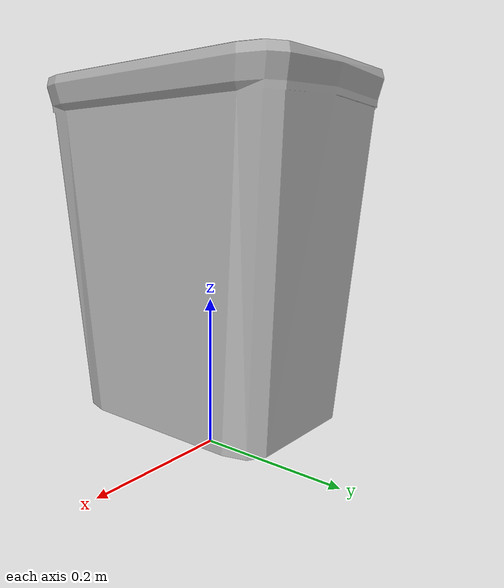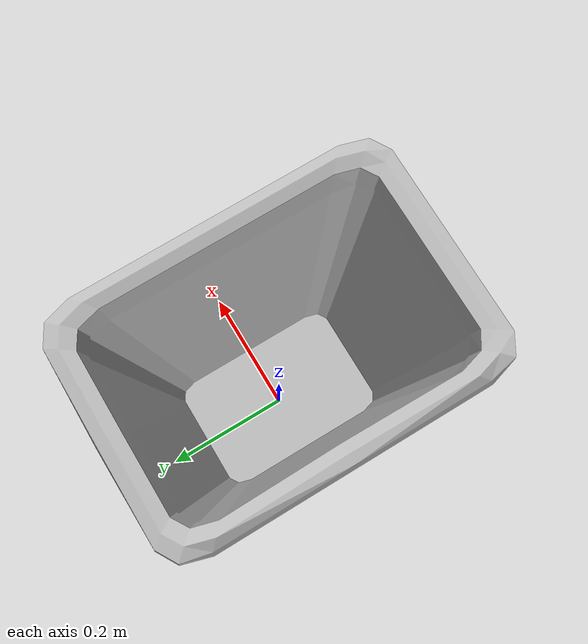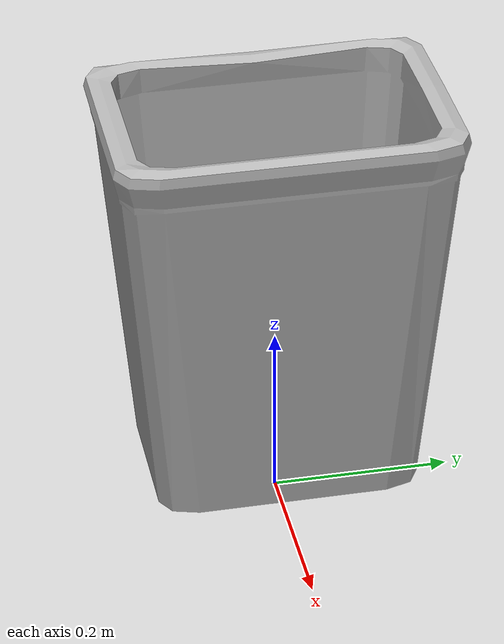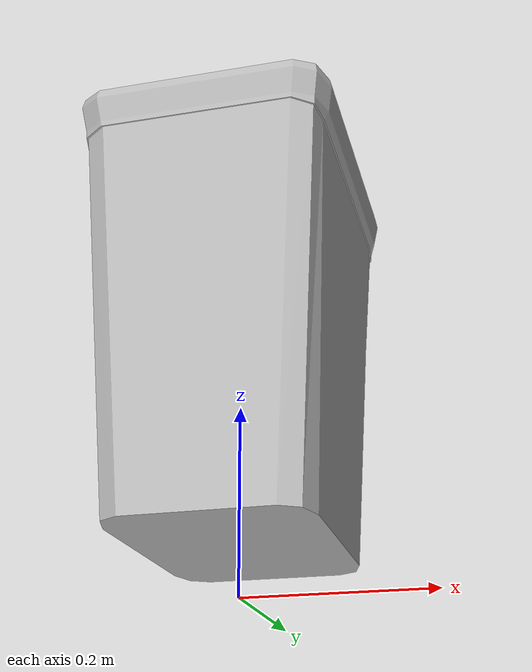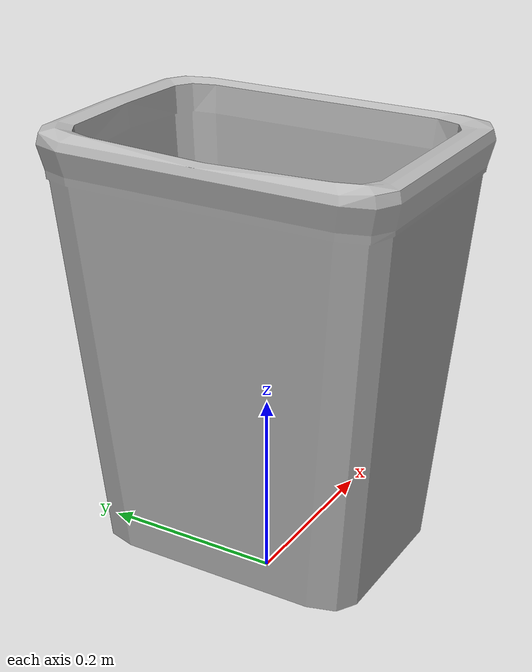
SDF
<?xml version="1.0"?>

<sdf version="1.6">
  <model name='TrashBin'>
    <pose>0 0 0.05 0 0 0</pose>
    <static>false</static>
    <link name="body">
      <pose>0 0 0 0 0 0</pose>

        <visual name="visual">
          <geometry>
            <mesh><uri>model://TrashBin/meshes/TrashBin.obj</uri></mesh>
          </geometry>
        </visual>

        <collision name="collision">
          <geometry>
            <mesh><uri>model://TrashBin/meshes/TrashBin.obj</uri></mesh>
          </geometry>
        </collision>

    </link>
  </model>
</sdf>
